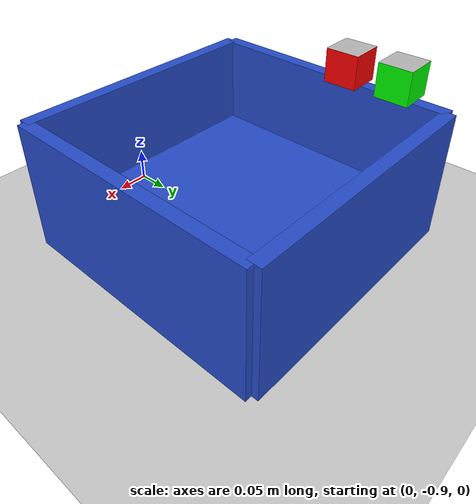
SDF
<sdf version="1.7">
 <world name="default">
  <light name="sun" type="directional">
   <pose>0 0 10 0 -0 0</pose>
   <diffuse>0.8 0.8 0.8 1</diffuse>
   <specular>0.2 0.2 0.2 1</specular>
   <attenuation>
    <range>1000</range>
    <constant>0.9</constant>
    <linear>0.01</linear>
    <quadratic>0.001</quadratic>
   </attenuation>
   <direction>-0.5 0.1 -0.9</direction>
   <spot><inner_angle>0</inner_angle><outer_angle>0</outer_angle><falloff>0</falloff></spot>
  </light>
  <model name="ground_plane">
   <static>1</static>
   <link name="link">
    <collision name="collision">
     <geometry><plane><normal>0 0 1</normal><size>100 100</size></plane></geometry>
     <surface><friction><ode><mu>100</mu><mu2>50</mu2></ode></friction></surface>
    </collision>
    <visual name="visual">
     <cast_shadows>0</cast_shadows>
     <geometry><plane><normal>0 0 1</normal><size>100 100</size></plane></geometry>
     <material>
      <script><uri>file://media/materials/scripts/gazebo.material</uri><name>Gazebo/Grey</name></script>
     </material>
    </visual>
   </link>
  </model>
  <gravity>0 0 -9.8</gravity>
  <magnetic_field>6e-06 2.3e-05 -4.2e-05</magnetic_field>
  <atmosphere type="adiabatic"/>
  <physics type="ode">
   <max_step_size>0.001</max_step_size>
   <real_time_factor>1</real_time_factor>
   <real_time_update_rate>1000</real_time_update_rate>
  </physics>
  <scene><ambient>0.4 0.4 0.4 1</ambient><background>0.7 0.7 0.7 1</background><shadows>1</shadows></scene>
  <audio><device>default</device></audio>
  <spherical_coordinates>
   <surface_model>EARTH_WGS84</surface_model>
   <latitude_deg>0</latitude_deg>
   <longitude_deg>0</longitude_deg>
   <elevation>0</elevation>
   <heading_deg>0</heading_deg>
  </spherical_coordinates>
  <model name="ur5_bin">
   <link name="bottom">
    <collision name="collision"><geometry><box><size>0.4 0.4 0.02</size></box></geometry></collision>
    <visual name="visual">
     <geometry><box><size>0.4 0.4 0.02</size></box></geometry>
     <material>
      <script><uri>file://media/materials/scripts/gazebo.material</uri><name>Gazebo/Blue</name></script>
     </material>
    </visual>
    <inertial>
     <mass>0.05</mass>
     <inertia><ixx>0.001</ixx><ixy>0</ixy><ixz>0</ixz><iyy>0.001</iyy><iyz>0</iyz><izz>0.001</izz></inertia>
    </inertial>
   </link>
   <link name="left">
    <pose>-0.2 0 0.05 0 -0 0</pose>
    <collision name="collision"><geometry><box><size>0.02 0.4 0.2</size></box></geometry></collision>
    <visual name="visual">
     <geometry><box><size>0.02 0.4 0.2</size></box></geometry>
     <material>
      <script><uri>file://media/materials/scripts/gazebo.material</uri><name>Gazebo/Blue</name></script>
     </material>
    </visual>
    <inertial>
     <mass>0.05</mass>
     <inertia><ixx>0.001</ixx><ixy>0</ixy><ixz>0</ixz><iyy>0.001</iyy><iyz>0</iyz><izz>0.001</izz></inertia>
    </inertial>
   </link>
   <link name="right">
    <pose>0.2 0 0.05 0 -0 0</pose>
    <collision name="collision"><geometry><box><size>0.02 0.4 0.2</size></box></geometry></collision>
    <visual name="visual">
     <geometry><box><size>0.02 0.4 0.2</size></box></geometry>
     <material>
      <script><uri>file://media/materials/scripts/gazebo.material</uri><name>Gazebo/Blue</name></script>
     </material>
    </visual>
    <inertial>
     <mass>0.05</mass>
     <inertia><ixx>0.001</ixx><ixy>0</ixy><ixz>0</ixz><iyy>0.001</iyy><iyz>0</iyz><izz>0.001</izz></inertia>
    </inertial>
   </link>
   <link name="back">
    <pose>0 0.2 0.05 0 -0 0</pose>
    <collision name="collision"><geometry><box><size>0.4 0.02 0.2</size></box></geometry></collision>
    <visual name="visual">
     <geometry><box><size>0.4 0.02 0.2</size></box></geometry>
     <material>
      <script><uri>file://media/materials/scripts/gazebo.material</uri><name>Gazebo/Blue</name></script>
     </material>
    </visual>
    <inertial>
     <mass>0.05</mass>
     <inertia><ixx>0.001</ixx><ixy>0</ixy><ixz>0</ixz><iyy>0.001</iyy><iyz>0</iyz><izz>0.001</izz></inertia>
    </inertial>
   </link>
   <link name="front">
    <pose>0 -0.2 0.05 0 -0 0</pose>
    <collision name="collision"><geometry><box><size>0.4 0.02 0.2</size></box></geometry></collision>
    <visual name="visual">
     <geometry><box><size>0.4 0.02 0.2</size></box></geometry>
     <material>
      <script><uri>file://media/materials/scripts/gazebo.material</uri><name>Gazebo/Blue</name></script>
     </material>
    </visual>
    <inertial>
     <mass>0.05</mass>
     <inertia><ixx>0.001</ixx><ixy>0</ixy><ixz>0</ixz><iyy>0.001</iyy><iyz>0</iyz><izz>0.001</izz></inertia>
    </inertial>
   </link>
   <joint name="left_wall" type="fixed"><parent>bottom</parent><child>left</child></joint>
   <joint name="right_wall" type="fixed"><parent>bottom</parent><child>right</child></joint>
   <joint name="back_wall" type="fixed"><parent>bottom</parent><child>back</child></joint>
   <joint name="front_wall" type="fixed"><parent>bottom</parent><child>front</child></joint>
   <pose>0.005611 -0.672074 0.049996 2.2e-05 1e-06 -0.01447</pose>
  </model>
  <model name="my_model">
   <pose>-0.164576 -0.613733 0.238026 -1e-05 -9e-06 0.010082</pose>
   <static>0</static>
   <link name="link">
    <inertial>
     <mass>1</mass>
     <inertia><ixx>0.083</ixx><ixy>0</ixy><ixz>0</ixz><iyy>0.083</iyy><iyz>0</iyz><izz>0.083</izz></inertia>
    </inertial>
    <collision name="collision"><geometry><box><size>0.05 0.05 0.05</size></box></geometry></collision>
    <visual name="visual">
     <geometry><box><size>0.05 0.05 0.05</size></box></geometry>
     <material>
      <ambient>1 0 0 1</ambient>
      <diffuse>1 0 0 1</diffuse>
      <specular>0 0 0 1</specular>
      <emissive>0 0 0 1</emissive>
     </material>
    </visual>
    <visual name="aruco200">
     <pose>0 0 0.0252 0 -0 1.5708</pose>
     <cast_shadows>0</cast_shadows>
     <geometry><box><size>0.05 0.05 1e-06</size></box></geometry>
     <material>
      <script>
       <uri>model://cube200/materials/scripts</uri>
       <uri>model://cube200/materials/textures/</uri>
       <name>aruco200/Image</name>
      </script>
     </material>
    </visual>
   </link>
  </model>
  <model name="my_model_0">
   <pose>-0.167729 -0.534325 0.238027 -3.1e-05 2.3e-05 0.002372</pose>
   <static>0</static>
   <link name="link">
    <inertial>
     <mass>1</mass>
     <inertia><ixx>0.083</ixx><ixy>0</ixy><ixz>0</ixz><iyy>0.083</iyy><iyz>0</iyz><izz>0.083</izz></inertia>
    </inertial>
    <collision name="collision"><geometry><box><size>0.05 0.05 0.05</size></box></geometry></collision>
    <visual name="visual">
     <geometry><box><size>0.05 0.05 0.05</size></box></geometry>
     <material>
      <ambient>0 1 0 1</ambient>
      <diffuse>0 1 0 1</diffuse>
      <specular>0 0 0 1</specular>
      <emissive>0 0 0 1</emissive>
     </material>
    </visual>
    <visual name="aruco201">
     <pose>0 0 0.0252 0 -0 1.5708</pose>
     <cast_shadows>0</cast_shadows>
     <geometry><box><size>0.05 0.05 1e-06</size></box></geometry>
     <material>
      <script>
       <uri>model://cube201/materials/scripts</uri>
       <uri>model://cube201/materials/textures/</uri>
       <name>aruco201/Image</name>
      </script>
     </material>
    </visual>
   </link>
  </model>
 </world>
</sdf>
